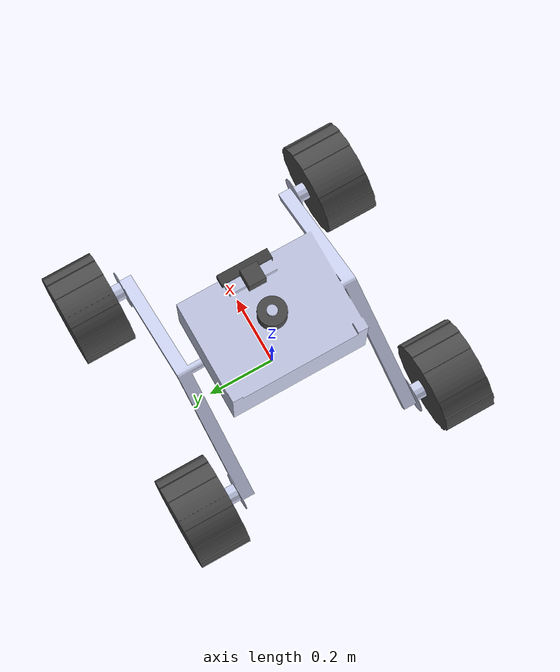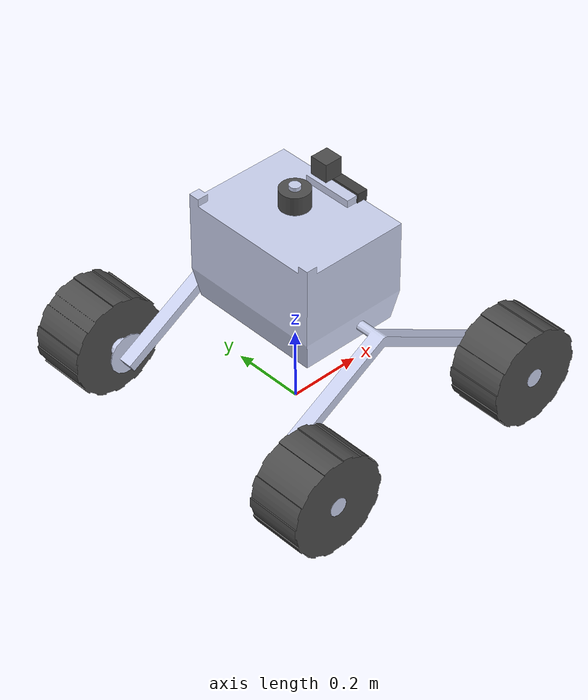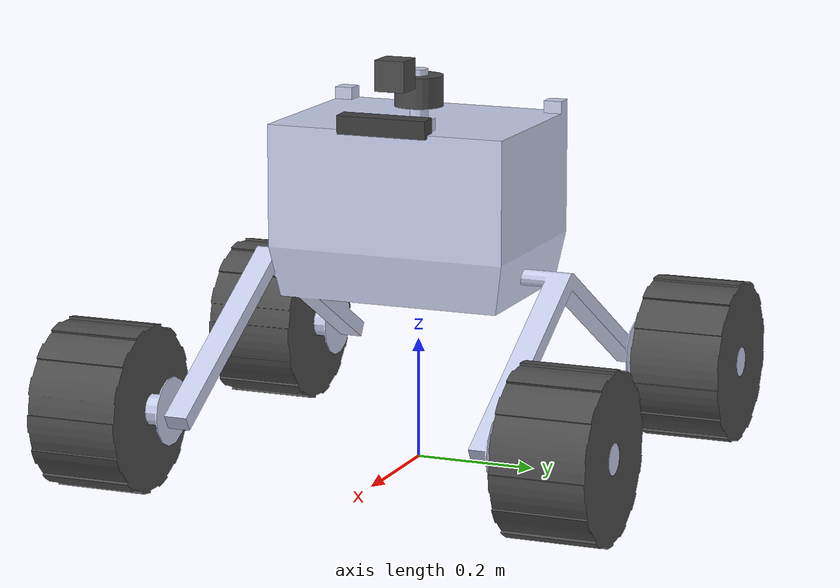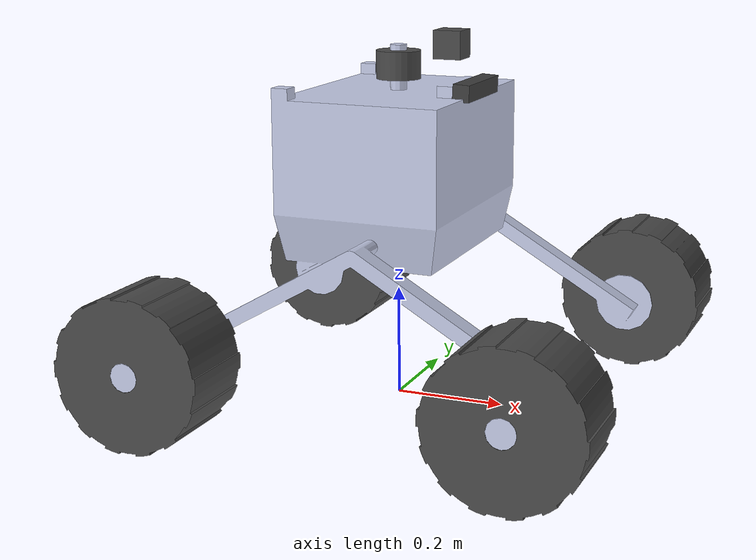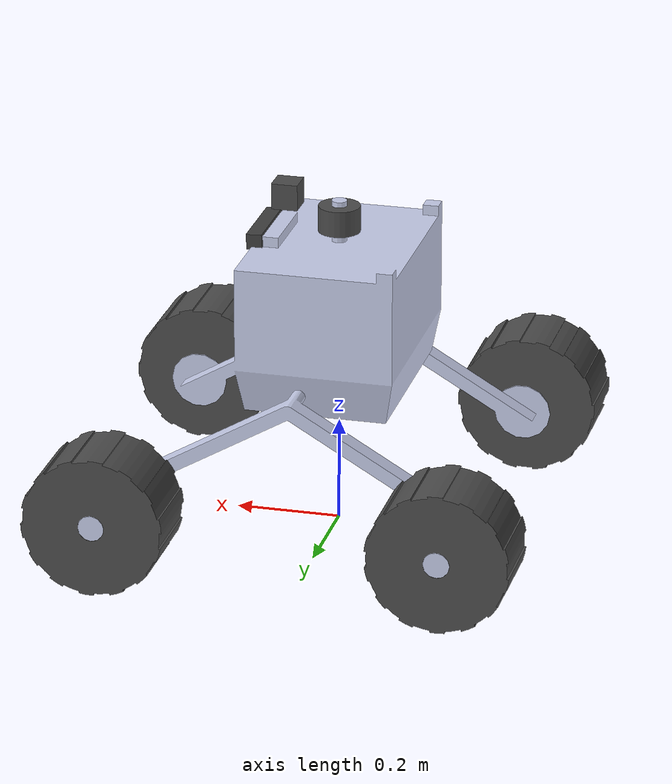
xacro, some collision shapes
<?xml version="1.0" encoding="utf-8"?>
<robot name="rover_description" xmlns:xacro="http://wiki.ros.org/xacro">

  <!-- 1. Automatically detect the ROS distribution from the environment -->
  <xacro:property name="ros_distro" value="$(env ROS_DISTRO)" />

  <!-- 2. Logic: If distro is 'humble', set is_ignition to true.
     For 'jazzy' (or others like 'rolling'), it will be false. -->
  <xacro:property name="is_ignition" value="${ros_distro == 'humble'}" />
  <xacro:arg name="is_sim" default="true" />
  <xacro:arg name="use_sim_time" default="true" />

  <!-- Depth Camera Parameters -->
  <xacro:arg name="camera_name" default="zed" />

  <!-- Wheel properties -->
  <xacro:property name="wheel_radius" value="0.135" />
  <xacro:property name="wheel_width" value="0.15" />

  <!-- Include the depth camera macro (local, no zed_wrapper dependency) -->
  <xacro:include filename="$(find rover_description)/urdf/components/zed_macro.urdf.xacro" />

  <!-- Include the gazebo functionality -->
  <xacro:include filename="$(find rover_description)/urdf/rover_gazebo.xacro" />

  <!-- Include ROS 2 CONTROL -->
  <xacro:include filename="$(find rover_description)/urdf/rover_ros2_control.xacro" />

  <link name="base_footprint"/>

  <joint name="base_joint" type="fixed">
    <parent link="base_footprint"/>
    <child link="base_link"/>
    <origin xyz="0 0 0" rpy="0 0 0"/>
  </joint>

  <link name="base_link">
    <inertial>
      <origin xyz="0.00283734598617559 -5.48612014375314E-06 0.406897744418785" rpy="0 0 0" />
      <mass value="36.4090186352555" />
      <inertia
        ixx="1.14989797110002"
        ixy="2.43735391975785E-05"
        ixz="0.0182296282265289"
        iyy="0.875741628239762"
        iyz="3.36012534940276E-05"
        izz="1.2152774654334" />
    </inertial>
    <visual>
      <origin xyz="0 0 0" rpy="0 0 0" />
      <geometry>
        <mesh filename="package://rover_description/meshes/base_link.STL" />
      </geometry>
      <material name="rover_blue">
        <color rgba="0.792156862745098 0.819607843137255 0.933333333333333 1" />
      </material>
    </visual>
    <!-- USE BOX INSTEAD OF MESH FOR COLLISION -->
    <collision>
      <origin xyz="0 0 0.35" rpy="0 0 0" />
      <geometry>
        <box size="0.8 0.6 0.4"/>
      </geometry>
    </collision>
  </link>

  <!-- ==================== WHEEL MACRO ==================== -->
  <xacro:macro name="wheel_link" params="name x_offset y_offset">
    <link name="link_${name}">
      <inertial>
        <origin xyz="0 ${y_offset * 0.075} 0" rpy="0 0 0" />
        <mass value="8.03286499782856" />
        <inertia
          ixx="0.0518365067203933"
          ixy="0"
          ixz="0"
          iyy="0.0735497696989294"
          iyz="0"
          izz="0.0518365067203933" />
      </inertial>
      <visual>
        <origin xyz="0 0 0" rpy="0 0 0" />
        <geometry>
          <mesh filename="package://rover_description/meshes/link_${name}.STL" />
        </geometry>
        <material name="sensor_grey">
              <color rgba="0.3 0.3 0.3 1.0" />
        </material>
      </visual>
      <!-- USE CYLINDER INSTEAD OF MESH FOR COLLISION -->
      <collision>
        <origin xyz="0 ${y_offset * 0.075} 0" rpy="${pi/2} 0 0" />
        <geometry>
          <cylinder radius="${wheel_radius}" length="${wheel_width}"/>
        </geometry>
      </collision>
    </link>

    <joint name="joint_${name}" type="continuous">
      <origin xyz="${x_offset} ${y_offset * 0.46} 0.135" rpy="0 0 0" />
      <parent link="base_link" />
      <child link="link_${name}" />
      <axis xyz="0 1 0" />
    </joint>
  </xacro:macro>

  <!-- Create all 4 wheels -->
  <xacro:wheel_link name="BR" x_offset="-0.29633" y_offset="-1"/>
  <xacro:wheel_link name="BL" x_offset="-0.29633" y_offset="1"/>
  <xacro:wheel_link name="FR" x_offset="0.35401" y_offset="-1"/>
  <xacro:wheel_link name="FL" x_offset="0.35401" y_offset="1"/>

    <!-- ZED Camera (simulated stereo camera) -->
    <xacro:zed_camera
      name="$(arg camera_name)"
      model="zed2"/>

  <joint name="zed_camera_mount" type="fixed">
    <parent link="base_link"/>
    <child link="$(arg camera_name)_camera_link"/>
    <origin xyz="0.145 0 0.56" rpy="0 0 0"/>
  </joint>

  <link name="imu_link">
    <inertial>
      <origin xyz="0 0 0" rpy="0 0 0" />
      <mass value="0.01" />
      <inertia ixx="1e-6" ixy="0" ixz="0" iyy="1e-6" iyz="0" izz="1e-6" />
    </inertial>
    <visual>
      <origin xyz="0 0 0" rpy="0 0 0" />
      <geometry>
        <mesh filename="package://rover_description/meshes/imu_link.STL" />
      </geometry>
      <material name="sensor_blue">
          <color rgba="0.0 0.0 0.8 1.0" />
      </material>
    </visual>
    <!-- USE BOX FOR IMU COLLISION -->
    <collision>
      <origin xyz="0 0 0" rpy="0 0 0" />
      <geometry>
        <box size="0.02 0.02 0.01"/>
      </geometry>
    </collision>
  </link>

  <joint name="imu_joint" type="fixed">
    <origin xyz="0 0 0.5" rpy="0 0 0" />
    <parent link="base_link" />
    <child link="imu_link" />
    <axis xyz="0 0 0" />
  </joint>

  <link name="laser_link">
    <inertial>
      <origin xyz="0 0 0" rpy="0 0 0" />
      <mass value="0.1" />
      <inertia ixx="1e-5" ixy="0" ixz="0" iyy="1e-5" iyz="0" izz="1e-5" />
    </inertial>
    <visual>
      <origin xyz="0 0 0" rpy="0 0 0" />
      <geometry>
        <mesh filename="package://rover_description/meshes/laser_link.STL" />
      </geometry>
      <material name="lidar_grey">
          <color rgba="0.3 0.3 0.3 1.0" />  <!-- Dark grey color -->
      </material>
    </visual>
    <!-- USE CYLINDER FOR LIDAR COLLISION -->
    <collision>
      <origin xyz="0 0 0" rpy="0 0 0" />
      <geometry>
        <cylinder radius="0.04" length="0.05"/>
      </geometry>
    </collision>
  </link>

  <joint name="laser_joint" type="fixed">
    <origin xyz="0 0 0.61" rpy="0 0 0" />
    <parent link="base_link" />
    <child link="laser_link" />
    <axis xyz="0 0 0" />
  </joint>

  <link name="gps_link">
    <inertial>
      <origin xyz="0 0 0" rpy="0 0 0" />
      <mass value="0.05" />
      <inertia ixx="1e-6" ixy="0" ixz="0" iyy="1e-6" iyz="0" izz="1e-6" />
    </inertial>
    <visual>
      <origin xyz="0 0 0" rpy="0 0 0" />
      <geometry>
        <box size="0.05 0.05 0.05" />
      </geometry>
      <material name="sensor_grey">
        <color rgba="0.3 0.3 0.3 1.0" />
      </material>
    </visual>
  </link>

<joint name="gps_joint" type="fixed">
  <origin xyz="0.1 0 0.65" rpy="0 0 0" />  <!-- Positioned above the lidar -->
  <parent link="base_link" />
  <child link="gps_link" />
  <axis xyz="0 0 0" />
</joint>

</robot>

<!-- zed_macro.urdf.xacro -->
<robot xmlns:xacro="http://wiki.ros.org/xacro">
  <xacro:property name="M_PI" value="3.1415926535897931" />

  <material name="depth_camera_mat">
    <color rgba="0.25 0.25 0.25 1.0"/>
  </material>

  <!-- Keep params aligned with zed-ros2-wrapper macro for compatibility. -->
  <xacro:macro name="zed_camera" params="name=zed model=virtual enable_gnss=false custom_baseline=0.12 gnss_xyz:='0 0 0' gnss_rpy:='0 0 0'">

    <xacro:if value="${model == 'zed'}">
      <xacro:property name="baseline" value="0.12" />
      <xacro:property name="height" value="0.03" />
      <xacro:property name="bottom_slope" value="0.05" />
      <xacro:property name="optical_offset_x" value="-0.01" />
      <xacro:property name="mono" value="false" />
    </xacro:if>

    <xacro:if value="${model == 'zed2'}">
      <xacro:property name="baseline" value="0.12" />
      <xacro:property name="height" value="0.03" />
      <xacro:property name="bottom_slope" value="0.05" />
      <xacro:property name="optical_offset_x" value="-0.01" />
      <xacro:property name="mono" value="false" />
    </xacro:if>

    <xacro:if value="${model == 'virtual'}">
      <xacro:property name="baseline" value="${custom_baseline}" />
      <xacro:property name="height" value="0.031" />
      <xacro:property name="bottom_slope" value="0.0" />
      <xacro:property name="optical_offset_x" value="0.0" />
      <xacro:property name="mono" value="false" />
    </xacro:if>

    <xacro:if value="${model == 'zedxonegs' or model == 'zedxone4k' or model == 'zedxonehdr'}">
      <xacro:property name="baseline" value="0.0" />
      <xacro:property name="height" value="0.031" />
      <xacro:property name="bottom_slope" value="0.0" />
      <xacro:property name="optical_offset_x" value="0.0" />
      <xacro:property name="mono" value="true" />
    </xacro:if>

    <!-- Camera mounting point -->
    <link name="${name}_camera_link" />

    <!-- Camera Center -->
    <link name="${name}_camera_center">
      <visual>
        <origin xyz="0 0 0" rpy="0 0 0"/>
        <geometry>
          <box size="0.03 ${baseline + 0.03} ${height}"/>
        </geometry>
        <material name="depth_camera_mat" />
      </visual>
      <collision>
        <origin xyz="0 0 0" rpy="0 0 0"/>
        <geometry>
          <box size="0.03 ${baseline + 0.03} ${height}"/>
        </geometry>
      </collision>
      <inertial>
        <mass value="0.135"/>
        <origin xyz="0 0 0" rpy="0 0 0"/>
        <inertia ixx="1e-4" ixy="0" ixz="0" iyy="1e-4" iyz="0" izz="1e-4"/>
      </inertial>
    </link>

    <joint name="${name}_camera_center_joint" type="fixed">
      <parent link="${name}_camera_link"/>
      <child link="${name}_camera_center"/>
      <origin xyz="0 0 ${height/2}" rpy="0 ${bottom_slope} 0" />
    </joint>

    <xacro:unless value="${mono}">
      <!-- Left Camera -->
      <link name="${name}_left_camera_frame" />
      <joint name="${name}_left_camera_joint" type="fixed">
        <parent link="${name}_camera_center"/>
        <child link="${name}_left_camera_frame"/>
        <origin xyz="${optical_offset_x} ${baseline/2} 0" rpy="0 0 0" />
      </joint>

      <link name="${name}_left_camera_frame_optical"/>
      <joint name="${name}_left_camera_optical_joint" type="fixed">
        <origin xyz="0 0 0" rpy="-${M_PI/2} 0.0 -${M_PI/2}"/>
        <parent link="${name}_left_camera_frame"/>
        <child link="${name}_left_camera_frame_optical"/>
      </joint>

      <link name="${name}_right_camera_frame" />
      <joint name="${name}_right_camera_joint" type="fixed">
        <parent link="${name}_camera_center"/>
        <child link="${name}_right_camera_frame"/>
        <origin xyz="${optical_offset_x} -${baseline/2} 0" rpy="0 0 0" />
      </joint>

      <link name="${name}_right_camera_frame_optical"/>
      <joint name="${name}_right_camera_optical_joint" type="fixed">
        <origin xyz="0 0 0" rpy="-${M_PI/2} 0.0 -${M_PI/2}"/>
        <parent link="${name}_right_camera_frame"/>
        <child link="${name}_right_camera_frame_optical"/>
      </joint>

      <link name="${name}_temp_left_link" />
      <joint name="${name}_temp_left_joint" type="fixed">
        <parent link="${name}_left_camera_frame"/>
        <child link="${name}_temp_left_link"/>
        <origin xyz="0 0 0" rpy="0 0 0" />
      </joint>

      <link name="${name}_temp_right_link" />
      <joint name="${name}_temp_right_joint" type="fixed">
        <parent link="${name}_right_camera_frame"/>
        <child link="${name}_temp_right_link"/>
        <origin xyz="0 0 0" rpy="0 0 0" />
      </joint>

      <link name="${name}_mag_link" />
      <joint name="${name}_mag_joint" type="fixed">
        <parent link="${name}_camera_center"/>
        <child link="${name}_mag_link"/>
        <origin xyz="0 0 0" rpy="0 0 0" />
      </joint>

      <link name="${name}_baro_link" />
      <joint name="${name}_baro_joint" type="fixed">
        <parent link="${name}_camera_center"/>
        <child link="${name}_baro_link"/>
        <origin xyz="0 0 0" rpy="0 0 0" />
      </joint>
    </xacro:unless>

    <xacro:if value="${mono}">
      <link name="${name}_camera_frame" />
      <joint name="${name}_camera_joint" type="fixed">
        <parent link="${name}_camera_center"/>
        <child link="${name}_camera_frame"/>
        <origin xyz="${optical_offset_x} 0 0" rpy="0 0 0" />
      </joint>

      <link name="${name}_camera_frame_optical"/>
      <joint name="${name}_camera_optical_joint" type="fixed">
        <origin xyz="0 0 0" rpy="-${M_PI/2} 0.0 -${M_PI/2}"/>
        <parent link="${name}_camera_frame"/>
        <child link="${name}_camera_frame_optical"/>
      </joint>
    </xacro:if>

    <xacro:if value="${enable_gnss}">
      <link name="${name}_gnss_link" />
      <joint name="${name}_gnss_joint" type="fixed">
        <parent link="${name}_camera_link"/>
        <child link="${name}_gnss_link"/>
        <origin xyz="${gnss_xyz}" rpy="${gnss_rpy}" />
      </joint>
    </xacro:if>

  </xacro:macro>
</robot>
